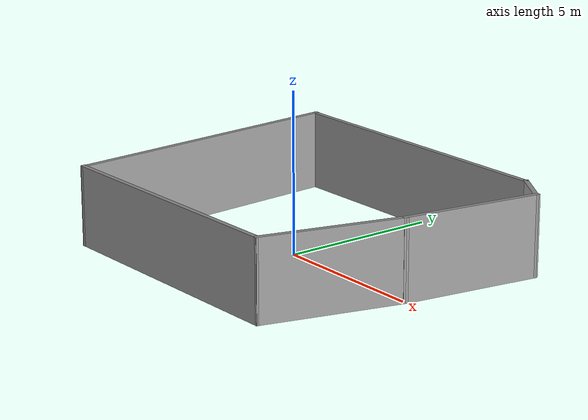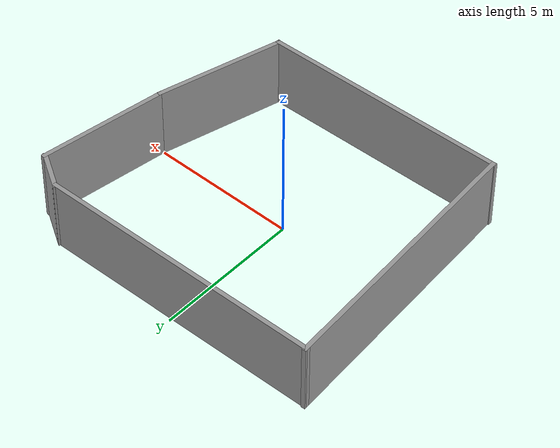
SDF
<?xml version='1.0'?>
<sdf version='1.7'>
  <model name='nexwall'>
    <pose>0.356207 0.281455 0 0 -0 0</pose>
    <link name='Wall_2'>
      <collision name='Wall_2_Collision'>
        <geometry>
          <box>
            <size>8.55904 0.15 2.5</size>
          </box>
        </geometry>
        <pose>0 0 1.25 0 -0 0</pose>
      </collision>
      <visual name='Wall_2_Visual'>
        <pose>0 0 1.25 0 -0 0</pose>
        <geometry>
          <box>
            <size>8.55904 0.15 2.5</size>
          </box>
        </geometry>
        <material>
          <script>
            <uri>file://media/materials/scripts/gazebo.material</uri>
            <name>Gazebo/Grey</name>
          </script>
          <ambient>1 1 1 1</ambient>
        </material>
        <meta>
          <layer>0</layer>
        </meta>
      </visual>
      <pose>-0.614151 -4.59154 0 0 -0 0.021705</pose>
    </link>
    <link name='Wall_3'>
      <collision name='Wall_3_Collision'>
        <geometry>
          <box>
            <size>4.5 0.15 2.5</size>
          </box>
        </geometry>
        <pose>0 0 1.25 0 -0 0</pose>
      </collision>
      <visual name='Wall_3_Visual'>
        <pose>0 0 1.25 0 -0 0</pose>
        <geometry>
          <box>
            <size>4.5 0.15 2.5</size>
          </box>
        </geometry>
        <material>
          <script>
            <uri>file://media/materials/scripts/gazebo.material</uri>
            <name>Gazebo/Grey</name>
          </script>
          <ambient>1 1 1 1</ambient>
        </material>
        <meta>
          <layer>0</layer>
        </meta>
      </visual>
      <pose>4.15231 -2.39939 0 0 -0 1.309</pose>
    </link>
    <link name='Wall_4'>
      <collision name='Wall_4_Collision'>
        <geometry>
          <box>
            <size>4.4882 0.15 2.5</size>
          </box>
        </geometry>
        <pose>0 0 1.25 0 -0 0</pose>
      </collision>
      <visual name='Wall_4_Visual'>
        <pose>0 0 1.25 0 -0 0</pose>
        <geometry>
          <box>
            <size>4.4882 0.15 2.5</size>
          </box>
        </geometry>
        <material>
          <script>
            <uri>file://media/materials/scripts/gazebo.material</uri>
            <name>Gazebo/Grey</name>
          </script>
          <ambient>1 1 1 1</ambient>
        </material>
        <meta>
          <layer>0</layer>
        </meta>
      </visual>
      <pose>5.04983 1.84464 0 0 -0 1.41592</pose>
    </link>
    <link name='Wall_5'>
      <collision name='Wall_5_Collision'>
        <geometry>
          <box>
            <size>1.48471 0.15 2.5</size>
          </box>
        </geometry>
        <pose>0 0 1.25 0 -0 0</pose>
      </collision>
      <visual name='Wall_5_Visual'>
        <pose>0 0 1.25 0 -0 0</pose>
        <geometry>
          <box>
            <size>1.48471 0.15 2.5</size>
          </box>
        </geometry>
        <material>
          <script>
            <uri>file://media/materials/scripts/gazebo.material</uri>
            <name>Gazebo/Grey</name>
          </script>
          <ambient>1 1 1 1</ambient>
        </material>
        <meta>
          <layer>0</layer>
        </meta>
      </visual>
      <pose>4.81686 4.3084 0 0 -0 2.58768</pose>
    </link>
    <link name='Wall_7'>
      <collision name='Wall_7_Collision'>
        <geometry>
          <box>
            <size>9.80878 0.15 2.5</size>
          </box>
        </geometry>
        <pose>0 0 1.25 0 -0 0</pose>
      </collision>
      <visual name='Wall_7_Visual'>
        <pose>0 0 1.25 0 -0 0</pose>
        <geometry>
          <box>
            <size>9.80878 0.15 2.5</size>
          </box>
        </geometry>
        <material>
          <script>
            <uri>file://media/materials/scripts/gazebo.material</uri>
            <name>Gazebo/Grey</name>
          </script>
          <ambient>1 1 1 1</ambient>
        </material>
        <meta>
          <layer>0</layer>
        </meta>
      </visual>
      <pose>-0.579236 4.53778 0 0 -0 -3.1227</pose>
    </link>
    <link name='Wall_8'>
      <collision name='Wall_8_Collision'>
        <geometry>
          <box>
            <size>9.33072 0.15 2.5</size>
          </box>
        </geometry>
        <pose>0 0 1.25 0 -0 0</pose>
      </collision>
      <visual name='Wall_8_Visual'>
        <pose>0 0 1.25 0 -0 0</pose>
        <geometry>
          <box>
            <size>9.33072 0.15 2.5</size>
          </box>
        </geometry>
        <material>
          <script>
            <uri>file://media/materials/scripts/gazebo.material</uri>
            <name>Gazebo/Grey</name>
          </script>
          <ambient>1 1 1 1</ambient>
        </material>
        <meta>
          <layer>0</layer>
        </meta>
      </visual>
      <pose>-5.09751 -0.102922 0 0 -0 -1.50316</pose>
    </link>
    <static>1</static>
  </model>
</sdf>
